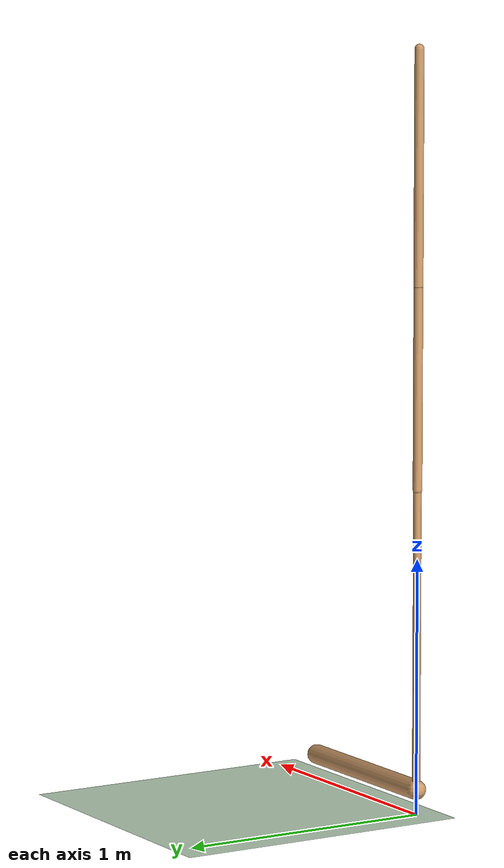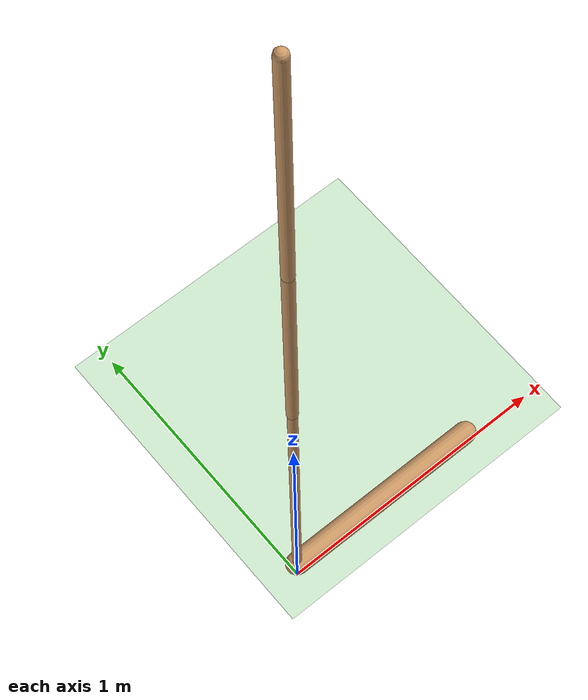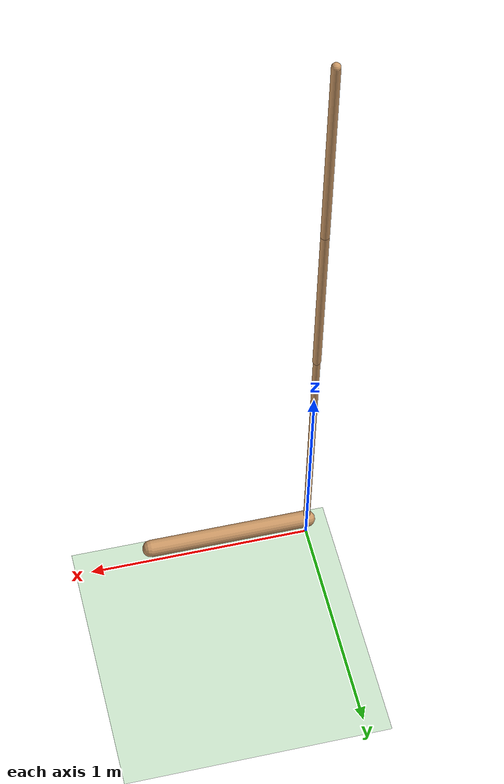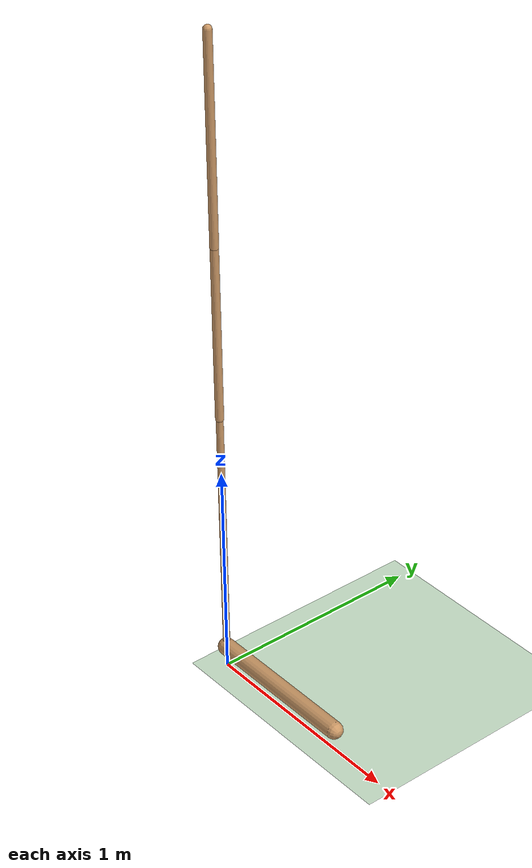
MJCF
<mujoco model="walker2d">
  <compiler angle="degree" inertiafromgeom="true" />
  <default>
    <joint armature="0.01" damping=".1" limited="true" />
    <geom conaffinity="0" condim="3" contype="1" density="1000" friction=".7 .1 .1" rgba="0.8 0.6 .4 1" />
  </default>
  <option integrator="RK4" timestep="0.002" />
  <worldbody>
    <light cutoff="100" diffuse="1 1 1" dir="-0 0 -1.3" directional="true" exponent="1" pos="0 0 1.3" specular=".1 .1 .1" />
    <geom conaffinity="1" condim="3" name="floor" pos="0 0 0" rgba="0.8 0.9 0.8 1" size="40 40 40" type="plane" material="MatPlane" />
    <body name="torso" pos="0 0 2.4960347175598145">
      <camera name="track" mode="trackcom" pos="0 -5 -1.25" xyaxes="1 0 0 0 0 1" />
      <joint armature="0" axis="1 0 0" damping="0" limited="false" name="rootx" pos="0 0 -1.25" stiffness="0" type="slide" />
      <joint armature="0" axis="0 0 1" damping="0" limited="false" name="rootz" pos="0 0 -1.25" ref="1.25" stiffness="0" type="slide" />
      <joint armature="0" axis="0 1 0" damping="0" limited="false" name="rooty" pos="0 0 0" stiffness="0" type="hinge" />
      <geom friction="0.9" name="torso_geom" size="0.018298272043466568 0.44843006134033203" type="capsule" />
      <body name="thigh" pos="0 0 -0.44843006134033203">
        <joint axis="0 -1 0" name="thigh_joint" pos="0 0 0" range="-150 0" type="hinge" />
        <site name="torso_thigh_site" pos="0 0 0" size="0.01" type="sphere" rgba="1 0 0 0.5" />
        <geom friction="0.9" pos="0 0 -0.3893589973449707" name="thigh_geom" size="0.017865343019366264 0.3893589973449707" type="capsule" />
        <body name="leg" pos="0 0 -1.363161325454712">
          <joint axis="0 -1 0" name="leg_joint" pos="0 0 0.5844433307647705" range="-150 0" type="hinge" />
          <site name="thigh_leg_site" pos="0 0 0.25" size="0.01" type="sphere" rgba="1 0 0 0.5" />
          <geom friction="0.9" name="leg_geom" size="0.015397248789668083 0.5844433307647705" type="capsule" />
          <body name="foot" pos="0.7220074534416199 0 -0.6844433307647705">
            <joint axis="0 -1 0" name="foot_joint" pos="-0.7220074534416199 0 0.1" range="-45 45" type="hinge" />
            <site name="leg_foot_site" pos="-0.2 0 0.1" size="0.01" type="sphere" rgba="1 0 0 0.5" />
            <geom friction="0.9" pos="-0.36100372672080994 0 0.1" quat="0.70710678118654757 0 -0.70710678118654746 0" name="foot_geom" size="0.03869189694523811 0.36100372672080994" type="capsule" />
          </body>
        </body>
      </body>

      <body name="thigh_left" pos="0 0 -0.44843006134033203">
        <joint axis="0 -1 0" name="thigh_left_joint" pos="0 0 0" range="-150 0" type="hinge" />
        <site name="torso_thigh_left_site" pos="0 0 0" size="0.01" type="sphere" rgba="1 0 0 0.5" />
        <geom friction="0.9" name="thigh_left_geom" rgba=".7 .3 .6 1" size="0.017865343019366264 0.3893589973449707" pos="0 0 -0.3893589973449707" type="capsule" />
        <body name="leg_left" pos="0 0 -1.363161325454712">
          <joint axis="0 -1 0" name="leg_left_joint" pos="0 0 0.5844433307647705" range="-150 0" type="hinge" />
          <site name="thigh_leg_left_site" pos="0 0 0.25" size="0.01" type="sphere" rgba="1 0 0 0.5" />
          <geom friction="0.9" name="leg_left_geom" rgba=".7 .3 .6 1" size="0.015397248789668083 0.5844433307647705" type="capsule" />
          <body name="foot_left" pos="0.7220074534416199 0 -0.6844433307647705">
            <joint axis="0 -1 0" name="foot_left_joint" pos="-0.7220074534416199 0 0.1" range="-45 45" type="hinge" />
            <site name="leg_foot_left_site" pos="-0.2 0 0.1" size="0.01" type="sphere" rgba="1 0 0 0.5" />
            <geom friction="1.9" name="foot_left_geom" rgba=".7 .3 .6 1" size="0.03869189694523811 0.36100372672080994" pos="-0.36100372672080994 0 0.1" type="capsule" quat="0.70710678118654757 0 -0.70710678118654746 0" />
          </body>
        </body>
      </body>
    </body>
  </worldbody>
  <actuator>

    <motor ctrllimited="true" ctrlrange="-1.0 1.0" gear="22.092781963021405" joint="thigh_joint" />
    <motor ctrllimited="true" ctrlrange="-1.0 1.0" gear="34.63926515269811" joint="leg_joint" />
    <motor ctrllimited="true" ctrlrange="-1.0 1.0" gear="150.12368948449372" joint="foot_joint" />
    <motor ctrllimited="true" ctrlrange="-1.0 1.0" gear="22.092781963021405" joint="thigh_left_joint" />
    <motor ctrllimited="true" ctrlrange="-1.0 1.0" gear="34.63926515269811" joint="leg_left_joint" />
    <motor ctrllimited="true" ctrlrange="-1.0 1.0" gear="150.12368948449372" joint="foot_left_joint" />

  </actuator>
    <asset>
        <texture type="skybox" builtin="gradient" rgb1=".4 .5 .6" rgb2="0 0 0" width="100" height="100" />
        <texture builtin="flat" height="1278" mark="cross" markrgb="1 1 1" name="texgeom" random="0.01" rgb1="0.8 0.6 0.4" rgb2="0.8 0.6 0.4" type="cube" width="127" />
        <texture builtin="checker" height="100" name="texplane" rgb1="0 0 0" rgb2="0.8 0.8 0.8" type="2d" width="100" />
        <material name="MatPlane" reflectance="0.5" shininess="1" specular="1" texrepeat="60 60" texture="texplane" />
        <material name="geom" texture="texgeom" texuniform="true" />
    </asset>

  <sensor>
    <force site="torso_thigh_site" name="torso_thigh_sensor" />
    <force site="thigh_leg_site" name="thigh_leg_sensor" />
    <force site="leg_foot_site" name="leg_foot_sensor" />
    <force site="torso_thigh_left_site" name="torso_thigh_left_sensor" />
    <force site="thigh_leg_left_site" name="thigh_leg_left_sensor" />
    <force site="leg_foot_left_site" name="leg_foot_left_sensor" />
  </sensor>
</mujoco>
